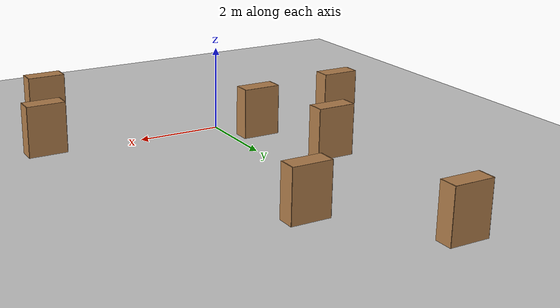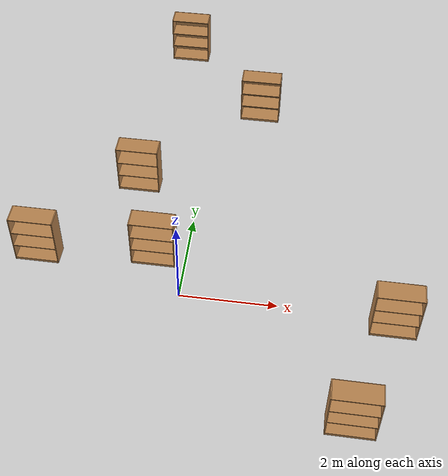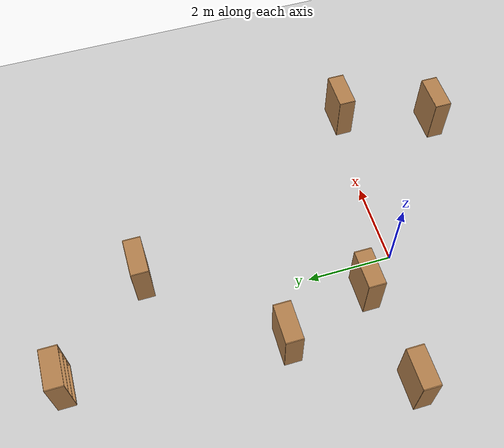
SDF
<sdf version="1.7">
 <world name="default">
  <light name="sun" type="directional">
   <pose>0 0 10 0 -0 0</pose>
   <diffuse>0.8 0.8 0.8 1</diffuse>
   <specular>0.2 0.2 0.2 1</specular>
   <attenuation>
    <range>1000</range>
    <constant>0.9</constant>
    <linear>0.01</linear>
    <quadratic>0.001</quadratic>
   </attenuation>
   <direction>-0.5 0.1 -0.9</direction>
   <spot><inner_angle>0</inner_angle><outer_angle>0</outer_angle><falloff>0</falloff></spot>
  </light>
  <model name="ground_plane">
   <static>1</static>
   <link name="link">
    <collision name="collision">
     <geometry><plane><normal>0 0 1</normal><size>100 100</size></plane></geometry>
     <surface><friction><ode><mu>100</mu><mu2>50</mu2></ode></friction></surface>
    </collision>
    <visual name="visual">
     <cast_shadows>0</cast_shadows>
     <geometry><plane><normal>0 0 1</normal><size>100 100</size></plane></geometry>
     <material>
      <script><uri>file://media/materials/scripts/gazebo.material</uri><name>Gazebo/Grey</name></script>
     </material>
    </visual>
   </link>
  </model>
  <gravity>0 0 -9.8</gravity>
  <magnetic_field>6e-06 2.3e-05 -4.2e-05</magnetic_field>
  <atmosphere type="adiabatic"/>
  <physics type="ode">
   <max_step_size>0.001</max_step_size>
   <real_time_factor>1</real_time_factor>
   <real_time_update_rate>1000</real_time_update_rate>
  </physics>
  <scene><ambient>0.4 0.4 0.4 1</ambient><background>0.7 0.7 0.7 1</background><shadows>1</shadows></scene>
  <spherical_coordinates>
   <surface_model>EARTH_WGS84</surface_model>
   <latitude_deg>0</latitude_deg>
   <longitude_deg>0</longitude_deg>
   <elevation>0</elevation>
   <heading_deg>0</heading_deg>
  </spherical_coordinates>
  <model name="bookshelf">
   <static>1</static>
   <link name="link">
    <inertial><mass>1</mass></inertial>
    <collision name="back">
     <pose>0 0.005 0.6 0 -0 0</pose>
     <geometry><box><size>0.9 0.01 1.2</size></box></geometry>
    </collision>
    <visual name="visual1">
     <pose>0 0.005 0.6 0 -0 0</pose>
     <geometry><box><size>0.9 0.01 1.2</size></box></geometry>
     <material>
      <script><uri>file://media/materials/scripts/gazebo.material</uri><name>Gazebo/Wood</name></script>
     </material>
    </visual>
    <collision name="left_side">
     <pose>0.45 -0.195 0.6 0 -0 0</pose>
     <geometry><box><size>0.02 0.4 1.2</size></box></geometry>
    </collision>
    <visual name="visual2">
     <pose>0.45 -0.195 0.6 0 -0 0</pose>
     <geometry><box><size>0.02 0.4 1.2</size></box></geometry>
     <material>
      <script><uri>file://media/materials/scripts/gazebo.material</uri><name>Gazebo/Wood</name></script>
     </material>
    </visual>
    <collision name="right_side">
     <pose>-0.45 -0.195 0.6 0 -0 0</pose>
     <geometry><box><size>0.02 0.4 1.2</size></box></geometry>
    </collision>
    <visual name="visual3">
     <pose>-0.45 -0.195 0.6 0 -0 0</pose>
     <geometry><box><size>0.02 0.4 1.2</size></box></geometry>
     <material>
      <script><uri>file://media/materials/scripts/gazebo.material</uri><name>Gazebo/Wood</name></script>
     </material>
    </visual>
    <collision name="bottom">
     <pose>0 -0.195 0.03 0 -0 0</pose>
     <geometry><box><size>0.88 0.4 0.06</size></box></geometry>
    </collision>
    <visual name="visual4">
     <pose>0 -0.195 0.03 0 -0 0</pose>
     <geometry><box><size>0.88 0.4 0.06</size></box></geometry>
     <material>
      <script><uri>file://media/materials/scripts/gazebo.material</uri><name>Gazebo/Wood</name></script>
     </material>
    </visual>
    <collision name="top">
     <pose>0 -0.195 1.19 0 -0 0</pose>
     <geometry><box><size>0.88 0.4 0.02</size></box></geometry>
    </collision>
    <visual name="visual5">
     <pose>0 -0.195 1.19 0 -0 0</pose>
     <geometry><box><size>0.88 0.4 0.02</size></box></geometry>
     <material>
      <script><uri>file://media/materials/scripts/gazebo.material</uri><name>Gazebo/Wood</name></script>
     </material>
    </visual>
    <collision name="low_shelf">
     <pose>0 -0.195 0.43 0 -0 0</pose>
     <geometry><box><size>0.88 0.4 0.02</size></box></geometry>
    </collision>
    <visual name="visual6">
     <pose>0 -0.195 0.43 0 -0 0</pose>
     <geometry><box><size>0.88 0.4 0.02</size></box></geometry>
     <material>
      <script><uri>file://media/materials/scripts/gazebo.material</uri><name>Gazebo/Wood</name></script>
     </material>
    </visual>
    <collision name="high_shelf">
     <pose>0 -0.195 0.8 0 -0 0</pose>
     <geometry><box><size>0.88 0.4 0.02</size></box></geometry>
    </collision>
    <visual name="visual7">
     <pose>0 -0.195 0.8 0 -0 0</pose>
     <geometry><box><size>0.88 0.4 0.02</size></box></geometry>
     <material>
      <script><uri>file://media/materials/scripts/gazebo.material</uri><name>Gazebo/Wood</name></script>
     </material>
    </visual>
   </link>
   <pose>1.08396 5.88188 0 0 -0 0</pose>
  </model>
  <model name="bookshelf_0">
   <static>1</static>
   <link name="link">
    <inertial><mass>1</mass></inertial>
    <collision name="back">
     <pose>0 0.005 0.6 0 -0 0</pose>
     <geometry><box><size>0.9 0.01 1.2</size></box></geometry>
    </collision>
    <visual name="visual1">
     <pose>0 0.005 0.6 0 -0 0</pose>
     <geometry><box><size>0.9 0.01 1.2</size></box></geometry>
     <material>
      <script><uri>file://media/materials/scripts/gazebo.material</uri><name>Gazebo/Wood</name></script>
     </material>
    </visual>
    <collision name="left_side">
     <pose>0.45 -0.195 0.6 0 -0 0</pose>
     <geometry><box><size>0.02 0.4 1.2</size></box></geometry>
    </collision>
    <visual name="visual2">
     <pose>0.45 -0.195 0.6 0 -0 0</pose>
     <geometry><box><size>0.02 0.4 1.2</size></box></geometry>
     <material>
      <script><uri>file://media/materials/scripts/gazebo.material</uri><name>Gazebo/Wood</name></script>
     </material>
    </visual>
    <collision name="right_side">
     <pose>-0.45 -0.195 0.6 0 -0 0</pose>
     <geometry><box><size>0.02 0.4 1.2</size></box></geometry>
    </collision>
    <visual name="visual3">
     <pose>-0.45 -0.195 0.6 0 -0 0</pose>
     <geometry><box><size>0.02 0.4 1.2</size></box></geometry>
     <material>
      <script><uri>file://media/materials/scripts/gazebo.material</uri><name>Gazebo/Wood</name></script>
     </material>
    </visual>
    <collision name="bottom">
     <pose>0 -0.195 0.03 0 -0 0</pose>
     <geometry><box><size>0.88 0.4 0.06</size></box></geometry>
    </collision>
    <visual name="visual4">
     <pose>0 -0.195 0.03 0 -0 0</pose>
     <geometry><box><size>0.88 0.4 0.06</size></box></geometry>
     <material>
      <script><uri>file://media/materials/scripts/gazebo.material</uri><name>Gazebo/Wood</name></script>
     </material>
    </visual>
    <collision name="top">
     <pose>0 -0.195 1.19 0 -0 0</pose>
     <geometry><box><size>0.88 0.4 0.02</size></box></geometry>
    </collision>
    <visual name="visual5">
     <pose>0 -0.195 1.19 0 -0 0</pose>
     <geometry><box><size>0.88 0.4 0.02</size></box></geometry>
     <material>
      <script><uri>file://media/materials/scripts/gazebo.material</uri><name>Gazebo/Wood</name></script>
     </material>
    </visual>
    <collision name="low_shelf">
     <pose>0 -0.195 0.43 0 -0 0</pose>
     <geometry><box><size>0.88 0.4 0.02</size></box></geometry>
    </collision>
    <visual name="visual6">
     <pose>0 -0.195 0.43 0 -0 0</pose>
     <geometry><box><size>0.88 0.4 0.02</size></box></geometry>
     <material>
      <script><uri>file://media/materials/scripts/gazebo.material</uri><name>Gazebo/Wood</name></script>
     </material>
    </visual>
    <collision name="high_shelf">
     <pose>0 -0.195 0.8 0 -0 0</pose>
     <geometry><box><size>0.88 0.4 0.02</size></box></geometry>
    </collision>
    <visual name="visual7">
     <pose>0 -0.195 0.8 0 -0 0</pose>
     <geometry><box><size>0.88 0.4 0.02</size></box></geometry>
     <material>
      <script><uri>file://media/materials/scripts/gazebo.material</uri><name>Gazebo/Wood</name></script>
     </material>
    </visual>
   </link>
   <pose>-0.931005 8.01553 0 0 -0 0</pose>
  </model>
  <model name="bookshelf_1">
   <static>1</static>
   <link name="link">
    <inertial><mass>1</mass></inertial>
    <collision name="back">
     <pose>0 0.005 0.6 0 -0 0</pose>
     <geometry><box><size>0.9 0.01 1.2</size></box></geometry>
    </collision>
    <visual name="visual1">
     <pose>0 0.005 0.6 0 -0 0</pose>
     <geometry><box><size>0.9 0.01 1.2</size></box></geometry>
     <material>
      <script><uri>file://media/materials/scripts/gazebo.material</uri><name>Gazebo/Wood</name></script>
     </material>
    </visual>
    <collision name="left_side">
     <pose>0.45 -0.195 0.6 0 -0 0</pose>
     <geometry><box><size>0.02 0.4 1.2</size></box></geometry>
    </collision>
    <visual name="visual2">
     <pose>0.45 -0.195 0.6 0 -0 0</pose>
     <geometry><box><size>0.02 0.4 1.2</size></box></geometry>
     <material>
      <script><uri>file://media/materials/scripts/gazebo.material</uri><name>Gazebo/Wood</name></script>
     </material>
    </visual>
    <collision name="right_side">
     <pose>-0.45 -0.195 0.6 0 -0 0</pose>
     <geometry><box><size>0.02 0.4 1.2</size></box></geometry>
    </collision>
    <visual name="visual3">
     <pose>-0.45 -0.195 0.6 0 -0 0</pose>
     <geometry><box><size>0.02 0.4 1.2</size></box></geometry>
     <material>
      <script><uri>file://media/materials/scripts/gazebo.material</uri><name>Gazebo/Wood</name></script>
     </material>
    </visual>
    <collision name="bottom">
     <pose>0 -0.195 0.03 0 -0 0</pose>
     <geometry><box><size>0.88 0.4 0.06</size></box></geometry>
    </collision>
    <visual name="visual4">
     <pose>0 -0.195 0.03 0 -0 0</pose>
     <geometry><box><size>0.88 0.4 0.06</size></box></geometry>
     <material>
      <script><uri>file://media/materials/scripts/gazebo.material</uri><name>Gazebo/Wood</name></script>
     </material>
    </visual>
    <collision name="top">
     <pose>0 -0.195 1.19 0 -0 0</pose>
     <geometry><box><size>0.88 0.4 0.02</size></box></geometry>
    </collision>
    <visual name="visual5">
     <pose>0 -0.195 1.19 0 -0 0</pose>
     <geometry><box><size>0.88 0.4 0.02</size></box></geometry>
     <material>
      <script><uri>file://media/materials/scripts/gazebo.material</uri><name>Gazebo/Wood</name></script>
     </material>
    </visual>
    <collision name="low_shelf">
     <pose>0 -0.195 0.43 0 -0 0</pose>
     <geometry><box><size>0.88 0.4 0.02</size></box></geometry>
    </collision>
    <visual name="visual6">
     <pose>0 -0.195 0.43 0 -0 0</pose>
     <geometry><box><size>0.88 0.4 0.02</size></box></geometry>
     <material>
      <script><uri>file://media/materials/scripts/gazebo.material</uri><name>Gazebo/Wood</name></script>
     </material>
    </visual>
    <collision name="high_shelf">
     <pose>0 -0.195 0.8 0 -0 0</pose>
     <geometry><box><size>0.88 0.4 0.02</size></box></geometry>
    </collision>
    <visual name="visual7">
     <pose>0 -0.195 0.8 0 -0 0</pose>
     <geometry><box><size>0.88 0.4 0.02</size></box></geometry>
     <material>
      <script><uri>file://media/materials/scripts/gazebo.material</uri><name>Gazebo/Wood</name></script>
     </material>
    </visual>
   </link>
   <pose>-1.35829 3.16679 0 0 -0 0</pose>
  </model>
  <model name="bookshelf_2">
   <static>1</static>
   <link name="link">
    <inertial><mass>1</mass></inertial>
    <collision name="back">
     <pose>0 0.005 0.6 0 -0 0</pose>
     <geometry><box><size>0.9 0.01 1.2</size></box></geometry>
    </collision>
    <visual name="visual1">
     <pose>0 0.005 0.6 0 -0 0</pose>
     <geometry><box><size>0.9 0.01 1.2</size></box></geometry>
     <material>
      <script><uri>file://media/materials/scripts/gazebo.material</uri><name>Gazebo/Wood</name></script>
     </material>
    </visual>
    <collision name="left_side">
     <pose>0.45 -0.195 0.6 0 -0 0</pose>
     <geometry><box><size>0.02 0.4 1.2</size></box></geometry>
    </collision>
    <visual name="visual2">
     <pose>0.45 -0.195 0.6 0 -0 0</pose>
     <geometry><box><size>0.02 0.4 1.2</size></box></geometry>
     <material>
      <script><uri>file://media/materials/scripts/gazebo.material</uri><name>Gazebo/Wood</name></script>
     </material>
    </visual>
    <collision name="right_side">
     <pose>-0.45 -0.195 0.6 0 -0 0</pose>
     <geometry><box><size>0.02 0.4 1.2</size></box></geometry>
    </collision>
    <visual name="visual3">
     <pose>-0.45 -0.195 0.6 0 -0 0</pose>
     <geometry><box><size>0.02 0.4 1.2</size></box></geometry>
     <material>
      <script><uri>file://media/materials/scripts/gazebo.material</uri><name>Gazebo/Wood</name></script>
     </material>
    </visual>
    <collision name="bottom">
     <pose>0 -0.195 0.03 0 -0 0</pose>
     <geometry><box><size>0.88 0.4 0.06</size></box></geometry>
    </collision>
    <visual name="visual4">
     <pose>0 -0.195 0.03 0 -0 0</pose>
     <geometry><box><size>0.88 0.4 0.06</size></box></geometry>
     <material>
      <script><uri>file://media/materials/scripts/gazebo.material</uri><name>Gazebo/Wood</name></script>
     </material>
    </visual>
    <collision name="top">
     <pose>0 -0.195 1.19 0 -0 0</pose>
     <geometry><box><size>0.88 0.4 0.02</size></box></geometry>
    </collision>
    <visual name="visual5">
     <pose>0 -0.195 1.19 0 -0 0</pose>
     <geometry><box><size>0.88 0.4 0.02</size></box></geometry>
     <material>
      <script><uri>file://media/materials/scripts/gazebo.material</uri><name>Gazebo/Wood</name></script>
     </material>
    </visual>
    <collision name="low_shelf">
     <pose>0 -0.195 0.43 0 -0 0</pose>
     <geometry><box><size>0.88 0.4 0.02</size></box></geometry>
    </collision>
    <visual name="visual6">
     <pose>0 -0.195 0.43 0 -0 0</pose>
     <geometry><box><size>0.88 0.4 0.02</size></box></geometry>
     <material>
      <script><uri>file://media/materials/scripts/gazebo.material</uri><name>Gazebo/Wood</name></script>
     </material>
    </visual>
    <collision name="high_shelf">
     <pose>0 -0.195 0.8 0 -0 0</pose>
     <geometry><box><size>0.88 0.4 0.02</size></box></geometry>
    </collision>
    <visual name="visual7">
     <pose>0 -0.195 0.8 0 -0 0</pose>
     <geometry><box><size>0.88 0.4 0.02</size></box></geometry>
     <material>
      <script><uri>file://media/materials/scripts/gazebo.material</uri><name>Gazebo/Wood</name></script>
     </material>
    </visual>
   </link>
   <pose>-3.07163 0.870454 0 0 -0 0</pose>
  </model>
  <model name="bookshelf_3">
   <static>1</static>
   <link name="link">
    <inertial><mass>1</mass></inertial>
    <collision name="back">
     <pose>0 0.005 0.6 0 -0 0</pose>
     <geometry><box><size>0.9 0.01 1.2</size></box></geometry>
    </collision>
    <visual name="visual1">
     <pose>0 0.005 0.6 0 -0 0</pose>
     <geometry><box><size>0.9 0.01 1.2</size></box></geometry>
     <material>
      <script><uri>file://media/materials/scripts/gazebo.material</uri><name>Gazebo/Wood</name></script>
     </material>
    </visual>
    <collision name="left_side">
     <pose>0.45 -0.195 0.6 0 -0 0</pose>
     <geometry><box><size>0.02 0.4 1.2</size></box></geometry>
    </collision>
    <visual name="visual2">
     <pose>0.45 -0.195 0.6 0 -0 0</pose>
     <geometry><box><size>0.02 0.4 1.2</size></box></geometry>
     <material>
      <script><uri>file://media/materials/scripts/gazebo.material</uri><name>Gazebo/Wood</name></script>
     </material>
    </visual>
    <collision name="right_side">
     <pose>-0.45 -0.195 0.6 0 -0 0</pose>
     <geometry><box><size>0.02 0.4 1.2</size></box></geometry>
    </collision>
    <visual name="visual3">
     <pose>-0.45 -0.195 0.6 0 -0 0</pose>
     <geometry><box><size>0.02 0.4 1.2</size></box></geometry>
     <material>
      <script><uri>file://media/materials/scripts/gazebo.material</uri><name>Gazebo/Wood</name></script>
     </material>
    </visual>
    <collision name="bottom">
     <pose>0 -0.195 0.03 0 -0 0</pose>
     <geometry><box><size>0.88 0.4 0.06</size></box></geometry>
    </collision>
    <visual name="visual4">
     <pose>0 -0.195 0.03 0 -0 0</pose>
     <geometry><box><size>0.88 0.4 0.06</size></box></geometry>
     <material>
      <script><uri>file://media/materials/scripts/gazebo.material</uri><name>Gazebo/Wood</name></script>
     </material>
    </visual>
    <collision name="top">
     <pose>0 -0.195 1.19 0 -0 0</pose>
     <geometry><box><size>0.88 0.4 0.02</size></box></geometry>
    </collision>
    <visual name="visual5">
     <pose>0 -0.195 1.19 0 -0 0</pose>
     <geometry><box><size>0.88 0.4 0.02</size></box></geometry>
     <material>
      <script><uri>file://media/materials/scripts/gazebo.material</uri><name>Gazebo/Wood</name></script>
     </material>
    </visual>
    <collision name="low_shelf">
     <pose>0 -0.195 0.43 0 -0 0</pose>
     <geometry><box><size>0.88 0.4 0.02</size></box></geometry>
    </collision>
    <visual name="visual6">
     <pose>0 -0.195 0.43 0 -0 0</pose>
     <geometry><box><size>0.88 0.4 0.02</size></box></geometry>
     <material>
      <script><uri>file://media/materials/scripts/gazebo.material</uri><name>Gazebo/Wood</name></script>
     </material>
    </visual>
    <collision name="high_shelf">
     <pose>0 -0.195 0.8 0 -0 0</pose>
     <geometry><box><size>0.88 0.4 0.02</size></box></geometry>
    </collision>
    <visual name="visual7">
     <pose>0 -0.195 0.8 0 -0 0</pose>
     <geometry><box><size>0.88 0.4 0.02</size></box></geometry>
     <material>
      <script><uri>file://media/materials/scripts/gazebo.material</uri><name>Gazebo/Wood</name></script>
     </material>
    </visual>
   </link>
   <pose>3.51022 -2.27659 0 0 -0 0</pose>
  </model>
  <model name="bookshelf_4">
   <static>1</static>
   <link name="link">
    <inertial><mass>1</mass></inertial>
    <collision name="back">
     <pose>0 0.005 0.6 0 -0 0</pose>
     <geometry><box><size>0.9 0.01 1.2</size></box></geometry>
    </collision>
    <visual name="visual1">
     <pose>0 0.005 0.6 0 -0 0</pose>
     <geometry><box><size>0.9 0.01 1.2</size></box></geometry>
     <material>
      <script><uri>file://media/materials/scripts/gazebo.material</uri><name>Gazebo/Wood</name></script>
     </material>
    </visual>
    <collision name="left_side">
     <pose>0.45 -0.195 0.6 0 -0 0</pose>
     <geometry><box><size>0.02 0.4 1.2</size></box></geometry>
    </collision>
    <visual name="visual2">
     <pose>0.45 -0.195 0.6 0 -0 0</pose>
     <geometry><box><size>0.02 0.4 1.2</size></box></geometry>
     <material>
      <script><uri>file://media/materials/scripts/gazebo.material</uri><name>Gazebo/Wood</name></script>
     </material>
    </visual>
    <collision name="right_side">
     <pose>-0.45 -0.195 0.6 0 -0 0</pose>
     <geometry><box><size>0.02 0.4 1.2</size></box></geometry>
    </collision>
    <visual name="visual3">
     <pose>-0.45 -0.195 0.6 0 -0 0</pose>
     <geometry><box><size>0.02 0.4 1.2</size></box></geometry>
     <material>
      <script><uri>file://media/materials/scripts/gazebo.material</uri><name>Gazebo/Wood</name></script>
     </material>
    </visual>
    <collision name="bottom">
     <pose>0 -0.195 0.03 0 -0 0</pose>
     <geometry><box><size>0.88 0.4 0.06</size></box></geometry>
    </collision>
    <visual name="visual4">
     <pose>0 -0.195 0.03 0 -0 0</pose>
     <geometry><box><size>0.88 0.4 0.06</size></box></geometry>
     <material>
      <script><uri>file://media/materials/scripts/gazebo.material</uri><name>Gazebo/Wood</name></script>
     </material>
    </visual>
    <collision name="top">
     <pose>0 -0.195 1.19 0 -0 0</pose>
     <geometry><box><size>0.88 0.4 0.02</size></box></geometry>
    </collision>
    <visual name="visual5">
     <pose>0 -0.195 1.19 0 -0 0</pose>
     <geometry><box><size>0.88 0.4 0.02</size></box></geometry>
     <material>
      <script><uri>file://media/materials/scripts/gazebo.material</uri><name>Gazebo/Wood</name></script>
     </material>
    </visual>
    <collision name="low_shelf">
     <pose>0 -0.195 0.43 0 -0 0</pose>
     <geometry><box><size>0.88 0.4 0.02</size></box></geometry>
    </collision>
    <visual name="visual6">
     <pose>0 -0.195 0.43 0 -0 0</pose>
     <geometry><box><size>0.88 0.4 0.02</size></box></geometry>
     <material>
      <script><uri>file://media/materials/scripts/gazebo.material</uri><name>Gazebo/Wood</name></script>
     </material>
    </visual>
    <collision name="high_shelf">
     <pose>0 -0.195 0.8 0 -0 0</pose>
     <geometry><box><size>0.88 0.4 0.02</size></box></geometry>
    </collision>
    <visual name="visual7">
     <pose>0 -0.195 0.8 0 -0 0</pose>
     <geometry><box><size>0.88 0.4 0.02</size></box></geometry>
     <material>
      <script><uri>file://media/materials/scripts/gazebo.material</uri><name>Gazebo/Wood</name></script>
     </material>
    </visual>
   </link>
   <pose>4.26973 -0.035701 0 0 -0 0</pose>
  </model>
  <model name="bookshelf_5">
   <static>1</static>
   <link name="link">
    <inertial><mass>1</mass></inertial>
    <collision name="back">
     <pose>0 0.005 0.6 0 -0 0</pose>
     <geometry><box><size>0.9 0.01 1.2</size></box></geometry>
    </collision>
    <visual name="visual1">
     <pose>0 0.005 0.6 0 -0 0</pose>
     <geometry><box><size>0.9 0.01 1.2</size></box></geometry>
     <material>
      <script><uri>file://media/materials/scripts/gazebo.material</uri><name>Gazebo/Wood</name></script>
     </material>
    </visual>
    <collision name="left_side">
     <pose>0.45 -0.195 0.6 0 -0 0</pose>
     <geometry><box><size>0.02 0.4 1.2</size></box></geometry>
    </collision>
    <visual name="visual2">
     <pose>0.45 -0.195 0.6 0 -0 0</pose>
     <geometry><box><size>0.02 0.4 1.2</size></box></geometry>
     <material>
      <script><uri>file://media/materials/scripts/gazebo.material</uri><name>Gazebo/Wood</name></script>
     </material>
    </visual>
    <collision name="right_side">
     <pose>-0.45 -0.195 0.6 0 -0 0</pose>
     <geometry><box><size>0.02 0.4 1.2</size></box></geometry>
    </collision>
    <visual name="visual3">
     <pose>-0.45 -0.195 0.6 0 -0 0</pose>
     <geometry><box><size>0.02 0.4 1.2</size></box></geometry>
     <material>
      <script><uri>file://media/materials/scripts/gazebo.material</uri><name>Gazebo/Wood</name></script>
     </material>
    </visual>
    <collision name="bottom">
     <pose>0 -0.195 0.03 0 -0 0</pose>
     <geometry><box><size>0.88 0.4 0.06</size></box></geometry>
    </collision>
    <visual name="visual4">
     <pose>0 -0.195 0.03 0 -0 0</pose>
     <geometry><box><size>0.88 0.4 0.06</size></box></geometry>
     <material>
      <script><uri>file://media/materials/scripts/gazebo.material</uri><name>Gazebo/Wood</name></script>
     </material>
    </visual>
    <collision name="top">
     <pose>0 -0.195 1.19 0 -0 0</pose>
     <geometry><box><size>0.88 0.4 0.02</size></box></geometry>
    </collision>
    <visual name="visual5">
     <pose>0 -0.195 1.19 0 -0 0</pose>
     <geometry><box><size>0.88 0.4 0.02</size></box></geometry>
     <material>
      <script><uri>file://media/materials/scripts/gazebo.material</uri><name>Gazebo/Wood</name></script>
     </material>
    </visual>
    <collision name="low_shelf">
     <pose>0 -0.195 0.43 0 -0 0</pose>
     <geometry><box><size>0.88 0.4 0.02</size></box></geometry>
    </collision>
    <visual name="visual6">
     <pose>0 -0.195 0.43 0 -0 0</pose>
     <geometry><box><size>0.88 0.4 0.02</size></box></geometry>
     <material>
      <script><uri>file://media/materials/scripts/gazebo.material</uri><name>Gazebo/Wood</name></script>
     </material>
    </visual>
    <collision name="high_shelf">
     <pose>0 -0.195 0.8 0 -0 0</pose>
     <geometry><box><size>0.88 0.4 0.02</size></box></geometry>
    </collision>
    <visual name="visual7">
     <pose>0 -0.195 0.8 0 -0 0</pose>
     <geometry><box><size>0.88 0.4 0.02</size></box></geometry>
     <material>
      <script><uri>file://media/materials/scripts/gazebo.material</uri><name>Gazebo/Wood</name></script>
     </material>
    </visual>
   </link>
   <pose>-0.660408 1.09158 0 0 -0 0</pose>
  </model>
 </world>
</sdf>
